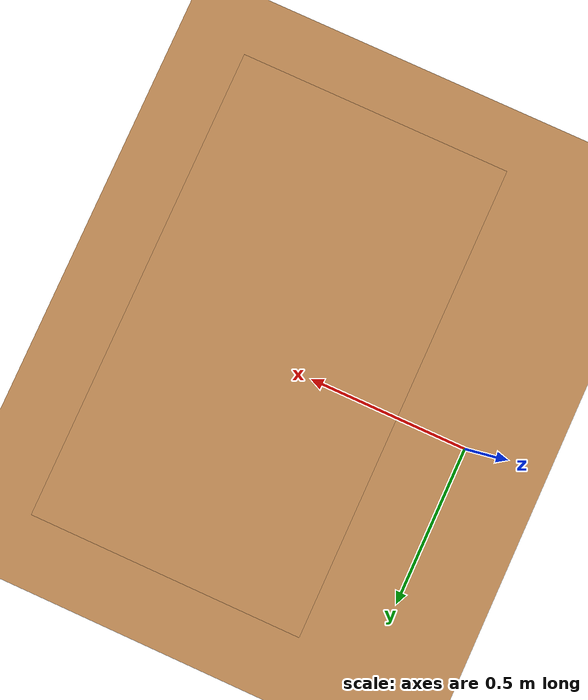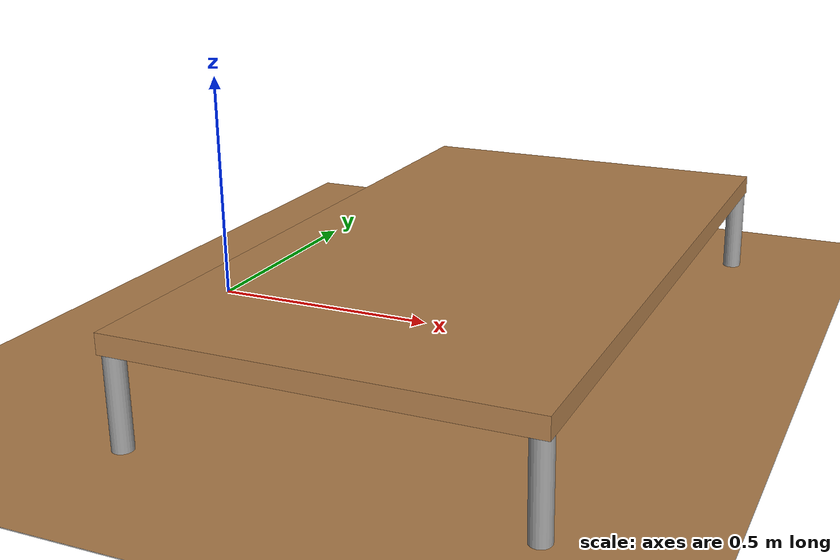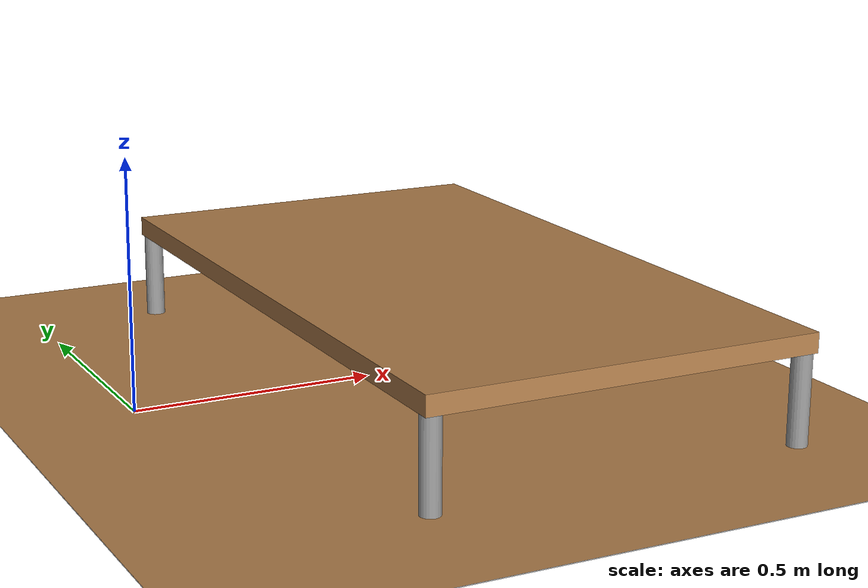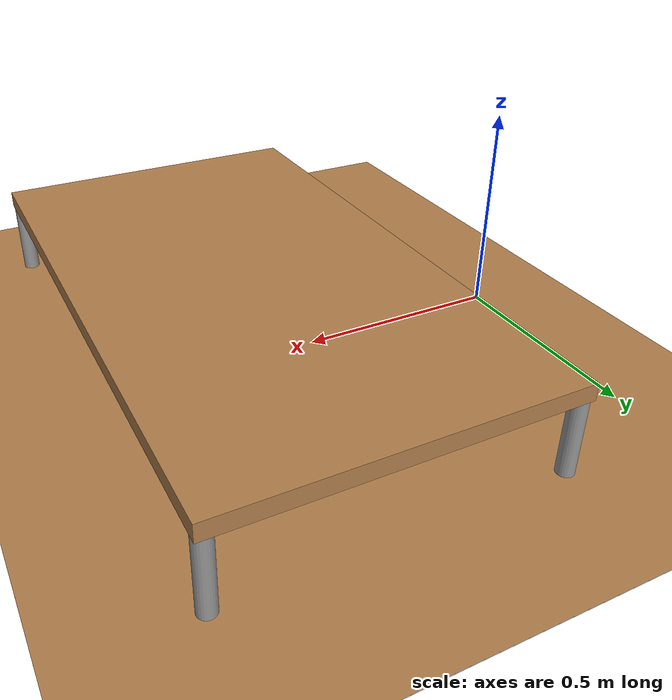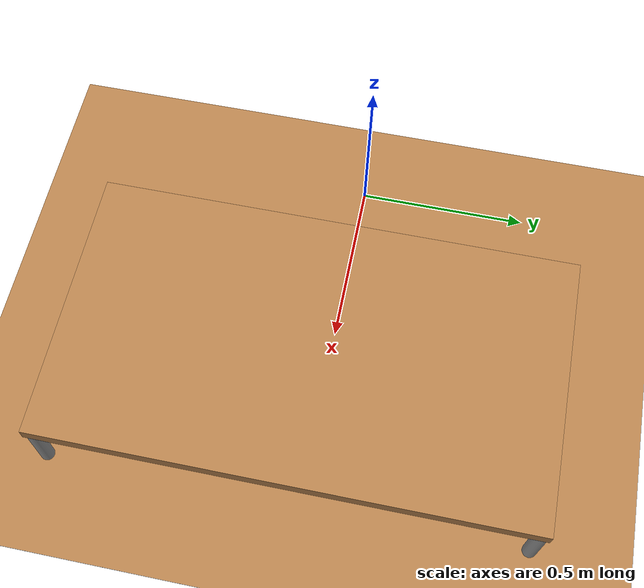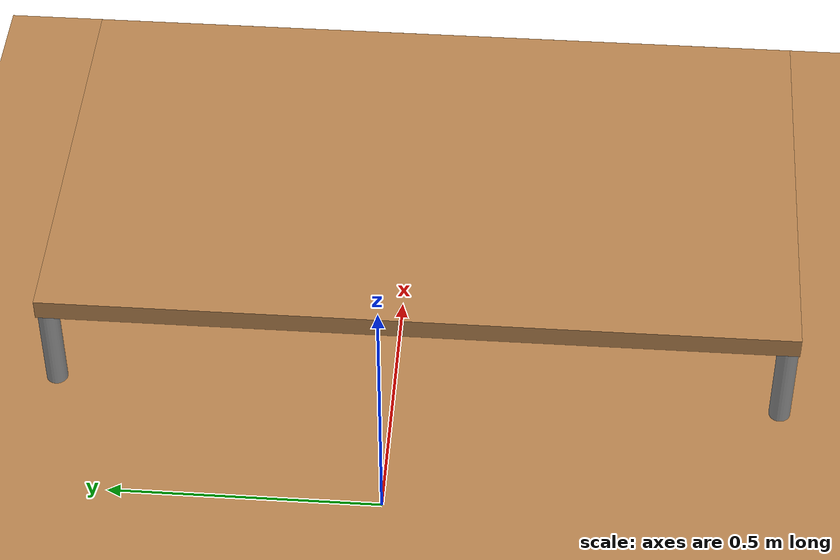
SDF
<sdf version="1.6">
 <world name="default">
  <model name="ground_plane">
   <static>1</static>
   <link name="link">
    <collision name="collision">
     <geometry><plane><normal>0 0 1</normal><size>100 100</size></plane></geometry>
     <surface><friction><ode><mu>100</mu><mu2>50</mu2></ode></friction></surface>
    </collision>
    <visual name="visual">
     <cast_shadows>0</cast_shadows>
     <geometry><plane><normal>0 0 1</normal><size>100 100</size></plane></geometry>
     <material>
      <script><uri>file://media/materials/scripts/gazebo.material</uri><name>Gazebo/Grey</name></script>
     </material>
    </visual>
   </link>
  </model>
  <light name="sun" type="directional">
   <pose>0 0 10 0 -0 0</pose>
   <diffuse>0.8 0.8 0.8 1</diffuse>
   <specular>0.1 0.1 0.1 1</specular>
   <attenuation>
    <range>1000</range>
    <constant>0.9</constant>
    <linear>0.01</linear>
    <quadratic>0.001</quadratic>
   </attenuation>
   <direction>-0.5 0.5 -1</direction>
  </light>
  <physics name="default_physics" default="0" type="ode">
   <real_time_update_rate>1000</real_time_update_rate>
   <max_step_size>0.001</max_step_size>
   <real_time_factor>1</real_time_factor>
  </physics>
  <gravity>0 0 0</gravity>
  <magnetic_field>6e-06 2.3e-05 -4.2e-05</magnetic_field>
  <atmosphere type="adiabatic"/>
  <scene><ambient>0.4 0.4 0.4 1</ambient><background>0.7 0.7 0.7 1</background><shadows>1</shadows></scene>
  <spherical_coordinates>
   <surface_model>EARTH_WGS84</surface_model>
   <latitude_deg>0</latitude_deg>
   <longitude_deg>0</longitude_deg>
   <elevation>0</elevation>
   <heading_deg>0</heading_deg>
  </spherical_coordinates>
  <model name="wooden_plane">
   <static>1</static>
   <link name="link">
    <visual name="visual">
     <cast_shadows>0</cast_shadows>
     <geometry><box><size>20 20 0.0001</size></box></geometry>
     <material>
      <script>
       <uri>model://wooden_plane/materials/scripts</uri>
       <uri>model://wooden_plane/materials/textures</uri>
       <name>vrc/wooden</name>
      </script>
     </material>
    </visual>
   </link>
  </model>
  <model name="table_0">
   <static>1</static>
   <link name="link">
    <collision name="surface">
     <pose>0 0 0.2 0 -0 0</pose>
     <geometry><box><size>1.5 0.8 0.03</size></box></geometry>
     <surface><friction><ode><mu>0.6</mu><mu2>0.6</mu2></ode></friction></surface>
    </collision>
    <visual name="visual1">
     <pose>0 0 0.2 0 -0 0</pose>
     <geometry><box><size>1.4 0.8 0.04</size></box></geometry>
     <material>
      <script><uri>file://media/materials/scripts/gazebo.material</uri><name>Gazebo/Wood</name></script>
     </material>
    </visual>
    <collision name="front_left_leg">
     <pose>0.68 0.38 0.1 0 -0 0</pose>
     <geometry><cylinder><radius>0.02</radius><length>0.2</length></cylinder></geometry>
    </collision>
    <visual name="front_left_leg">
     <pose>0.68 0.38 0.1 0 -0 0</pose>
     <geometry><cylinder><radius>0.02</radius><length>0.2</length></cylinder></geometry>
     <material>
      <script><uri>file://media/materials/scripts/gazebo.material</uri><name>Gazebo/Grey</name></script>
     </material>
    </visual>
    <collision name="front_right_leg">
     <pose>0.68 -0.38 0.1 0 -0 0</pose>
     <geometry><cylinder><radius>0.02</radius><length>0.2</length></cylinder></geometry>
    </collision>
    <visual name="front_right_leg">
     <pose>0.68 -0.38 0.1 0 -0 0</pose>
     <geometry><cylinder><radius>0.02</radius><length>0.2</length></cylinder></geometry>
     <material>
      <script><uri>file://media/materials/scripts/gazebo.material</uri><name>Gazebo/Grey</name></script>
     </material>
    </visual>
    <collision name="back_right_leg">
     <pose>-0.68 -0.38 0.1 0 -0 0</pose>
     <geometry><cylinder><radius>0.02</radius><length>0.2</length></cylinder></geometry>
    </collision>
    <visual name="back_right_leg">
     <pose>-0.68 -0.38 0.1 0 -0 0</pose>
     <geometry><cylinder><radius>0.02</radius><length>0.2</length></cylinder></geometry>
     <material>
      <script><uri>file://media/materials/scripts/gazebo.material</uri><name>Gazebo/Grey</name></script>
     </material>
    </visual>
    <collision name="back_left_leg">
     <pose>-0.68 0.38 0.1 0 -0 0</pose>
     <geometry><cylinder><radius>0.02</radius><length>0.2</length></cylinder></geometry>
    </collision>
    <visual name="back_left_leg">
     <pose>-0.68 0.38 0.1 0 -0 0</pose>
     <geometry><cylinder><radius>0.02</radius><length>0.2</length></cylinder></geometry>
     <material>
      <script><uri>file://media/materials/scripts/gazebo.material</uri><name>Gazebo/Grey</name></script>
     </material>
    </visual>
   </link>
   <pose>0.65 -0.04207 0 0 0 -1.5708</pose>
  </model>
 </world>
</sdf>
